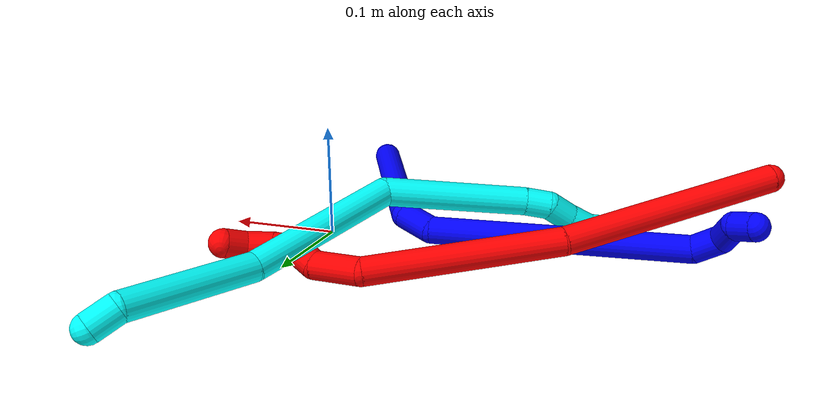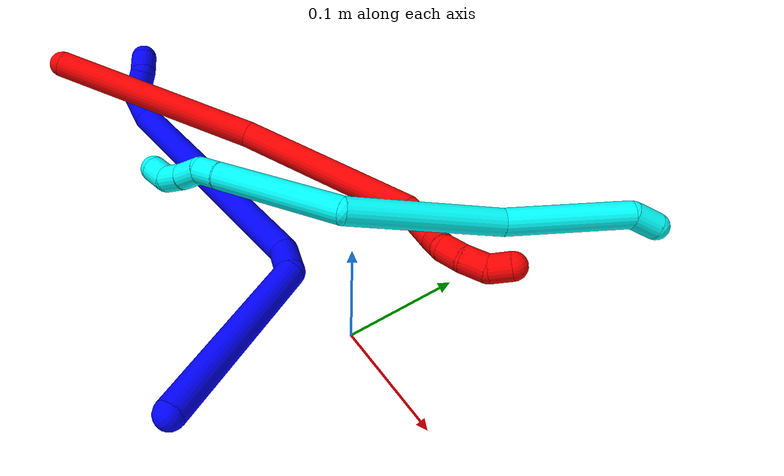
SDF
<sdf version="1.7">
 <world name="default">
  <model name="photoneo_s_sensor">
   <static>1</static>
   <pose>0 0 2 1.57079 1.57079 3.14159</pose>
   <link name="link">
    <inertial><mass>0.1</mass></inertial>
    <sensor name="sensor" type="depth">
     <update_rate>30</update_rate>
     <camera>
      <horizontal_fov>1.22</horizontal_fov>
      <image><width>1920</width><height>1200</height><format>B8G8R8</format></image>
      <clip><near>0.1</near><far>4</far></clip>
      <depth_camera><output>points</output></depth_camera>
     </camera>
     <plugin name="camera_plugin" filename="libgazebo_ros_depth_camera.so">
      <baseline>0.2</baseline>
      <alwaysOn>1</alwaysOn>
      <updateRate>0.0</updateRate>
      <cameraName>camera_ir</cameraName>
      <imageTopicName>/camera/color/image_raw</imageTopicName>
      <cameraInfoTopicName>/camera/color/camera_info</cameraInfoTopicName>
      <depthImageTopicName>/camera/depth/image_raw</depthImageTopicName>
      <depthImageCameraInfoTopicName>/camera/depth/camera_info</depthImageCameraInfoTopicName>
      <pointCloudTopicName>/camera/depth/points</pointCloudTopicName>
      <frameName>fr_optical</frameName>
      <pointCloudCutoff>0.1</pointCloudCutoff>
      <pointCloudCutoffMax>2.0</pointCloudCutoffMax>
      <distortionK1>0</distortionK1>
      <distortionK2>0</distortionK2>
      <distortionK3>0</distortionK3>
      <distortionT1>0</distortionT1>
      <distortionT2>0</distortionT2>
      <CxPrime>0</CxPrime>
      <Cx>0</Cx>
      <Cy>0</Cy>
      <focalLength>0</focalLength>
      <hackBaseline>0</hackBaseline>
     </plugin>
    </sensor>
   </link>
  </model>
  <model name="bin">
   <static>1</static>
   <link name="bottom">
    <collision name="collision-bottom">
     <pose>0 0 -0.01 0 -0 0</pose>
     <geometry><box><size>0.8 0.6 0.02</size></box></geometry>
     <surface>
      <friction><ode><mu>100</mu><mu2>100</mu2></ode></friction>
      <contact><collide_bitmask>65535</collide_bitmask></contact>
     </surface>
    </collision>
   </link>
   <link name="west_wall">
    <collision name="collision-west_wall">
     <pose>-0.41 0 0.1 0 -0 0</pose>
     <geometry><box><size>0.02 0.6 0.2</size></box></geometry>
     <surface>
      <friction><ode><mu>100</mu><mu2>100</mu2></ode></friction>
      <contact><collide_bitmask>65535</collide_bitmask></contact>
     </surface>
    </collision>
   </link>
   <link name="east_wall">
    <collision name="collision-east_wall">
     <pose>0.41 0 0.1 0 -0 0</pose>
     <geometry><box><size>0.02 0.6 0.2</size></box></geometry>
     <surface>
      <friction><ode><mu>100</mu><mu2>100</mu2></ode></friction>
      <contact><collide_bitmask>65535</collide_bitmask></contact>
     </surface>
    </collision>
   </link>
   <link name="south_wall">
    <collision name="collision-south_wall">
     <pose>0 -0.31 0.1 0 -0 0</pose>
     <geometry><box><size>0.8 0.02 0.2</size></box></geometry>
     <surface>
      <friction><ode><mu>100</mu><mu2>100</mu2></ode></friction>
      <contact><collide_bitmask>65535</collide_bitmask></contact>
     </surface>
    </collision>
   </link>
   <link name="north_wall">
    <collision name="collision-north_wall">
     <pose>0 0.31 0.1 0 -0 0</pose>
     <geometry><box><size>0.8 0.02 0.2</size></box></geometry>
     <surface>
      <friction><ode><mu>100</mu><mu2>100</mu2></ode></friction>
      <contact><collide_bitmask>65535</collide_bitmask></contact>
     </surface>
    </collision>
   </link>
  </model>
  <model name="1">
   <static>0</static>
   <link name="1">
    <collision name="collision-cylinder-e_1_1_4">
     <pose>-0.066189 0.036428 -0.026172 -2.19379 -0.975208 1.60421</pose>
     <geometry><cylinder><radius>0.0125</radius><length>0.159913</length></cylinder></geometry>
     <surface>
      <friction><ode><mu>1.16</mu><mu2>1.16</mu2><slip1>0</slip1><slip2>0</slip2></ode></friction>
      <contact><ode><kp>1e+06</kp><kd>1</kd><max_vel>0</max_vel><min_depth>0.001</min_depth></ode></contact>
     </surface>
    </collision>
    <visual name="visual-cylinder-e_1_1_4">
     <pose>-0.066189 0.036428 -0.026172 -2.19379 -0.975208 1.60421</pose>
     <geometry><cylinder><radius>0.0125</radius><length>0.159913</length></cylinder></geometry>
     <material><ambient>0 0 1 1</ambient></material>
    </visual>
    <collision name="collision-cylinder-e_2_4_5">
     <pose>-0.141852 0.085436 -0.047866 -1.22887 -0.617054 0.442359</pose>
     <geometry><cylinder><radius>0.0125</radius><length>0.032743</length></cylinder></geometry>
     <surface>
      <friction><ode><mu>1.16</mu><mu2>1.16</mu2><slip1>0</slip1><slip2>0</slip2></ode></friction>
      <contact><ode><kp>1e+06</kp><kd>1</kd><max_vel>0</max_vel><min_depth>0.001</min_depth></ode></contact>
     </surface>
    </collision>
    <visual name="visual-cylinder-e_2_4_5">
     <pose>-0.141852 0.085436 -0.047866 -1.22887 -0.617054 0.442359</pose>
     <geometry><cylinder><radius>0.0125</radius><length>0.032743</length></cylinder></geometry>
     <material><ambient>0 0 1 1</ambient></material>
    </visual>
    <collision name="collision-cylinder-e_3_5_6">
     <pose>-0.164873 0.204831 0.003412 -1.15784 -0.115658 0.075645</pose>
     <geometry><cylinder><radius>0.0125</radius><length>0.234806</length></cylinder></geometry>
     <surface>
      <friction><ode><mu>1.16</mu><mu2>1.16</mu2><slip1>0</slip1><slip2>0</slip2></ode></friction>
      <contact><ode><kp>1e+06</kp><kd>1</kd><max_vel>0</max_vel><min_depth>0.001</min_depth></ode></contact>
     </surface>
    </collision>
    <visual name="visual-cylinder-e_3_5_6">
     <pose>-0.164873 0.204831 0.003412 -1.15784 -0.115658 0.075645</pose>
     <geometry><cylinder><radius>0.0125</radius><length>0.234806</length></cylinder></geometry>
     <material><ambient>0 0 1 1</ambient></material>
    </visual>
    <collision name="collision-cylinder-e_4_6_7">
     <pose>-0.177354 0.324838 0.049569 -1.61961 0.080695 -0.084729</pose>
     <geometry><cylinder><radius>0.0125</radius><length>0.0265</length></cylinder></geometry>
     <surface>
      <friction><ode><mu>1.16</mu><mu2>1.16</mu2><slip1>0</slip1><slip2>0</slip2></ode></friction>
      <contact><ode><kp>1e+06</kp><kd>1</kd><max_vel>0</max_vel><min_depth>0.001</min_depth></ode></contact>
     </surface>
    </collision>
    <visual name="visual-cylinder-e_4_6_7">
     <pose>-0.177354 0.324838 0.049569 -1.61961 0.080695 -0.084729</pose>
     <geometry><cylinder><radius>0.0125</radius><length>0.0265</length></cylinder></geometry>
     <material><ambient>0 0 1 1</ambient></material>
    </visual>
    <collision name="collision-cylinder-e_5_7_8">
     <pose>-0.177627 0.346792 0.040004 -2.36514 -0.106884 0.260115</pose>
     <geometry><cylinder><radius>0.0125</radius><length>0.025153</length></cylinder></geometry>
     <surface>
      <friction><ode><mu>1.16</mu><mu2>1.16</mu2><slip1>0</slip1><slip2>0</slip2></ode></friction>
      <contact><ode><kp>1e+06</kp><kd>1</kd><max_vel>0</max_vel><min_depth>0.001</min_depth></ode></contact>
     </surface>
    </collision>
    <visual name="visual-cylinder-e_5_7_8">
     <pose>-0.177627 0.346792 0.040004 -2.36514 -0.106884 0.260115</pose>
     <geometry><cylinder><radius>0.0125</radius><length>0.025153</length></cylinder></geometry>
     <material><ambient>0 0 1 1</ambient></material>
    </visual>
    <collision name="collision-cylinder-e_6_8_2">
     <pose>-0.183232 0.364971 0.029598 -1.7272 -0.420525 0.489408</pose>
     <geometry><cylinder><radius>0.0125</radius><length>0.020885</length></cylinder></geometry>
     <surface>
      <friction><ode><mu>1.16</mu><mu2>1.16</mu2><slip1>0</slip1><slip2>0</slip2></ode></friction>
      <contact><ode><kp>1e+06</kp><kd>1</kd><max_vel>0</max_vel><min_depth>0.001</min_depth></ode></contact>
     </surface>
    </collision>
    <visual name="visual-cylinder-e_6_8_2">
     <pose>-0.183232 0.364971 0.029598 -1.7272 -0.420525 0.489408</pose>
     <geometry><cylinder><radius>0.0125</radius><length>0.020885</length></cylinder></geometry>
     <material><ambient>0 0 1 1</ambient></material>
    </visual>
    <collision name="collision-sphere-2">
     <pose>-0.187495 0.374387 0.028113 0 -0 0</pose>
     <geometry><sphere><radius>0.0125</radius></sphere></geometry>
     <surface>
      <friction><ode><mu>1.16</mu><mu2>1.16</mu2><slip1>0</slip1><slip2>0</slip2></ode></friction>
      <contact><ode><kp>1e+06</kp><kd>1</kd><max_vel>0</max_vel><min_depth>0.001</min_depth></ode></contact>
     </surface>
    </collision>
    <visual name="visual-sphere-2">
     <pose>-0.187495 0.374387 0.028113 0 -0 0</pose>
     <geometry><sphere><radius>0.0125</radius></sphere></geometry>
     <material><ambient>0 0 1 1</ambient></material>
    </visual>
    <collision name="collision-sphere-4">
     <pose>-0.132379 0.072857 -0.052343 0 -0 0</pose>
     <geometry><sphere><radius>0.0125</radius></sphere></geometry>
     <surface>
      <friction><ode><mu>1.16</mu><mu2>1.16</mu2><slip1>0</slip1><slip2>0</slip2></ode></friction>
      <contact><ode><kp>1e+06</kp><kd>1</kd><max_vel>0</max_vel><min_depth>0.001</min_depth></ode></contact>
     </surface>
    </collision>
    <visual name="visual-sphere-4">
     <pose>-0.132379 0.072857 -0.052343 0 -0 0</pose>
     <geometry><sphere><radius>0.0125</radius></sphere></geometry>
     <material><ambient>0 0 1 1</ambient></material>
    </visual>
    <collision name="collision-sphere-1">
     <geometry><sphere><radius>0.0125</radius></sphere></geometry>
     <surface>
      <friction><ode><mu>1.16</mu><mu2>1.16</mu2><slip1>0</slip1><slip2>0</slip2></ode></friction>
      <contact><ode><kp>1e+06</kp><kd>1</kd><max_vel>0</max_vel><min_depth>0.001</min_depth></ode></contact>
     </surface>
    </collision>
    <visual name="visual-sphere-1">
     <geometry><sphere><radius>0.0125</radius></sphere></geometry>
     <material><ambient>0 0 1 1</ambient></material>
    </visual>
    <collision name="collision-sphere-8">
     <pose>-0.178969 0.355554 0.031083 0 -0 0</pose>
     <geometry><sphere><radius>0.0125</radius></sphere></geometry>
     <surface>
      <friction><ode><mu>1.16</mu><mu2>1.16</mu2><slip1>0</slip1><slip2>0</slip2></ode></friction>
      <contact><ode><kp>1e+06</kp><kd>1</kd><max_vel>0</max_vel><min_depth>0.001</min_depth></ode></contact>
     </surface>
    </collision>
    <visual name="visual-sphere-8">
     <pose>-0.178969 0.355554 0.031083 0 -0 0</pose>
     <geometry><sphere><radius>0.0125</radius></sphere></geometry>
     <material><ambient>0 0 1 1</ambient></material>
    </visual>
    <collision name="collision-sphere-5">
     <pose>-0.151325 0.098016 -0.043389 0 -0 0</pose>
     <geometry><sphere><radius>0.0125</radius></sphere></geometry>
     <surface>
      <friction><ode><mu>1.16</mu><mu2>1.16</mu2><slip1>0</slip1><slip2>0</slip2></ode></friction>
      <contact><ode><kp>1e+06</kp><kd>1</kd><max_vel>0</max_vel><min_depth>0.001</min_depth></ode></contact>
     </surface>
    </collision>
    <visual name="visual-sphere-5">
     <pose>-0.151325 0.098016 -0.043389 0 -0 0</pose>
     <geometry><sphere><radius>0.0125</radius></sphere></geometry>
     <material><ambient>0 0 1 1</ambient></material>
    </visual>
    <collision name="collision-sphere-6">
     <pose>-0.178422 0.311646 0.050214 0 -0 0</pose>
     <geometry><sphere><radius>0.0125</radius></sphere></geometry>
     <surface>
      <friction><ode><mu>1.16</mu><mu2>1.16</mu2><slip1>0</slip1><slip2>0</slip2></ode></friction>
      <contact><ode><kp>1e+06</kp><kd>1</kd><max_vel>0</max_vel><min_depth>0.001</min_depth></ode></contact>
     </surface>
    </collision>
    <visual name="visual-sphere-6">
     <pose>-0.178422 0.311646 0.050214 0 -0 0</pose>
     <geometry><sphere><radius>0.0125</radius></sphere></geometry>
     <material><ambient>0 0 1 1</ambient></material>
    </visual>
    <collision name="collision-sphere-7">
     <pose>-0.176286 0.338029 0.048925 0 -0 0</pose>
     <geometry><sphere><radius>0.0125</radius></sphere></geometry>
     <surface>
      <friction><ode><mu>1.16</mu><mu2>1.16</mu2><slip1>0</slip1><slip2>0</slip2></ode></friction>
      <contact><ode><kp>1e+06</kp><kd>1</kd><max_vel>0</max_vel><min_depth>0.001</min_depth></ode></contact>
     </surface>
    </collision>
    <visual name="visual-sphere-7">
     <pose>-0.176286 0.338029 0.048925 0 -0 0</pose>
     <geometry><sphere><radius>0.0125</radius></sphere></geometry>
     <material><ambient>0 0 1 1</ambient></material>
    </visual>
    <inertial>
     <pose>-0.133874 0.163344 -0.004026 0 -0 0</pose>
     <mass>0.5</mass>
     <inertia>
      <ixx>0.001344</ixx>
      <ixy>0</ixy>
      <ixz>0</ixz>
      <iyy>0.000993</iyy>
      <iyz>0</iyz>
      <izz>-0.000739</izz>
     </inertia>
    </inertial>
   </link>
   <pose>0.007781 -0.154819 0.034699 2.64078 -0.646091 -1.31828</pose>
  </model>
  <model name="2">
   <static>0</static>
   <link name="2">
    <collision name="collision-cylinder-e_1_1_4">
     <pose>0.023447 0.090507 0.03524 -1.19949 0.236874 -0.16237</pose>
     <geometry><cylinder><radius>0.0125</radius><length>0.199831</length></cylinder></geometry>
     <surface>
      <friction><ode><mu>1.16</mu><mu2>1.16</mu2><slip1>0</slip1><slip2>0</slip2></ode></friction>
      <contact><ode><kp>1e+06</kp><kd>1</kd><max_vel>0</max_vel><min_depth>0.001</min_depth></ode></contact>
     </surface>
    </collision>
    <visual name="visual-cylinder-e_1_1_4">
     <pose>0.023447 0.090507 0.03524 -1.19949 0.236874 -0.16237</pose>
     <geometry><cylinder><radius>0.0125</radius><length>0.199831</length></cylinder></geometry>
     <material><ambient>1 0 0 1</ambient></material>
    </visual>
    <collision name="collision-cylinder-e_2_4_5">
     <pose>0.071844 0.261661 0.08537 -1.38822 0.295343 -0.246353</pose>
     <geometry><cylinder><radius>0.0125</radius><length>0.171443</length></cylinder></geometry>
     <surface>
      <friction><ode><mu>1.16</mu><mu2>1.16</mu2><slip1>0</slip1><slip2>0</slip2></ode></friction>
      <contact><ode><kp>1e+06</kp><kd>1</kd><max_vel>0</max_vel><min_depth>0.001</min_depth></ode></contact>
     </surface>
    </collision>
    <visual name="visual-cylinder-e_2_4_5">
     <pose>0.071844 0.261661 0.08537 -1.38822 0.295343 -0.246353</pose>
     <geometry><cylinder><radius>0.0125</radius><length>0.171443</length></cylinder></geometry>
     <material><ambient>1 0 0 1</ambient></material>
    </visual>
    <collision name="collision-cylinder-e_3_5_6">
     <pose>0.102072 0.361989 0.092338 -1.95349 0.243759 -0.358789</pose>
     <geometry><cylinder><radius>0.0125</radius><length>0.043725</length></cylinder></geometry>
     <surface>
      <friction><ode><mu>1.16</mu><mu2>1.16</mu2><slip1>0</slip1><slip2>0</slip2></ode></friction>
      <contact><ode><kp>1e+06</kp><kd>1</kd><max_vel>0</max_vel><min_depth>0.001</min_depth></ode></contact>
     </surface>
    </collision>
    <visual name="visual-cylinder-e_3_5_6">
     <pose>0.102072 0.361989 0.092338 -1.95349 0.243759 -0.358789</pose>
     <geometry><cylinder><radius>0.0125</radius><length>0.043725</length></cylinder></geometry>
     <material><ambient>1 0 0 1</ambient></material>
    </visual>
    <collision name="collision-cylinder-e_4_6_7">
     <pose>0.112954 0.387678 0.078046 -2.38544 0.569552 -1.27028</pose>
     <geometry><cylinder><radius>0.0125</radius><length>0.020792</length></cylinder></geometry>
     <surface>
      <friction><ode><mu>1.16</mu><mu2>1.16</mu2><slip1>0</slip1><slip2>0</slip2></ode></friction>
      <contact><ode><kp>1e+06</kp><kd>1</kd><max_vel>0</max_vel><min_depth>0.001</min_depth></ode></contact>
     </surface>
    </collision>
    <visual name="visual-cylinder-e_4_6_7">
     <pose>0.112954 0.387678 0.078046 -2.38544 0.569552 -1.27028</pose>
     <geometry><cylinder><radius>0.0125</radius><length>0.020792</length></cylinder></geometry>
     <material><ambient>1 0 0 1</ambient></material>
    </visual>
    <collision name="collision-cylinder-e_5_7_8">
     <pose>0.123272 0.402958 0.070129 -1.73626 0.46454 -0.544747</pose>
     <geometry><cylinder><radius>0.0125</radius><length>0.021033</length></cylinder></geometry>
     <surface>
      <friction><ode><mu>1.16</mu><mu2>1.16</mu2><slip1>0</slip1><slip2>0</slip2></ode></friction>
      <contact><ode><kp>1e+06</kp><kd>1</kd><max_vel>0</max_vel><min_depth>0.001</min_depth></ode></contact>
     </surface>
    </collision>
    <visual name="visual-cylinder-e_5_7_8">
     <pose>0.123272 0.402958 0.070129 -1.73626 0.46454 -0.544747</pose>
     <geometry><cylinder><radius>0.0125</radius><length>0.021033</length></cylinder></geometry>
     <material><ambient>1 0 0 1</ambient></material>
    </visual>
    <collision name="collision-cylinder-e_6_8_9">
     <pose>0.132901 0.42263 0.069552 -1.47763 0.440138 -0.402026</pose>
     <geometry><cylinder><radius>0.0125</radius><length>0.023086</length></cylinder></geometry>
     <surface>
      <friction><ode><mu>1.16</mu><mu2>1.16</mu2><slip1>0</slip1><slip2>0</slip2></ode></friction>
      <contact><ode><kp>1e+06</kp><kd>1</kd><max_vel>0</max_vel><min_depth>0.001</min_depth></ode></contact>
     </surface>
    </collision>
    <visual name="visual-cylinder-e_6_8_9">
     <pose>0.132901 0.42263 0.069552 -1.47763 0.440138 -0.402026</pose>
     <geometry><cylinder><radius>0.0125</radius><length>0.023086</length></cylinder></geometry>
     <material><ambient>1 0 0 1</ambient></material>
    </visual>
    <collision name="collision-cylinder-e_7_9_2">
     <pose>0.144489 0.439204 0.074798 -0.965437 0.7261 -0.393039</pose>
     <geometry><cylinder><radius>0.0125</radius><length>0.02009</length></cylinder></geometry>
     <surface>
      <friction><ode><mu>1.16</mu><mu2>1.16</mu2><slip1>0</slip1><slip2>0</slip2></ode></friction>
      <contact><ode><kp>1e+06</kp><kd>1</kd><max_vel>0</max_vel><min_depth>0.001</min_depth></ode></contact>
     </surface>
    </collision>
    <visual name="visual-cylinder-e_7_9_2">
     <pose>0.144489 0.439204 0.074798 -0.965437 0.7261 -0.393039</pose>
     <geometry><cylinder><radius>0.0125</radius><length>0.02009</length></cylinder></geometry>
     <material><ambient>1 0 0 1</ambient></material>
    </visual>
    <collision name="collision-sphere-2">
     <pose>0.151158 0.44538 0.079072 0 -0 0</pose>
     <geometry><sphere><radius>0.0125</radius></sphere></geometry>
     <surface>
      <friction><ode><mu>1.16</mu><mu2>1.16</mu2><slip1>0</slip1><slip2>0</slip2></ode></friction>
      <contact><ode><kp>1e+06</kp><kd>1</kd><max_vel>0</max_vel><min_depth>0.001</min_depth></ode></contact>
     </surface>
    </collision>
    <visual name="visual-sphere-2">
     <pose>0.151158 0.44538 0.079072 0 -0 0</pose>
     <geometry><sphere><radius>0.0125</radius></sphere></geometry>
     <material><ambient>1 0 0 1</ambient></material>
    </visual>
    <collision name="collision-sphere-9">
     <pose>0.137819 0.433027 0.070523 0 -0 0</pose>
     <geometry><sphere><radius>0.0125</radius></sphere></geometry>
     <surface>
      <friction><ode><mu>1.16</mu><mu2>1.16</mu2><slip1>0</slip1><slip2>0</slip2></ode></friction>
      <contact><ode><kp>1e+06</kp><kd>1</kd><max_vel>0</max_vel><min_depth>0.001</min_depth></ode></contact>
     </surface>
    </collision>
    <visual name="visual-sphere-9">
     <pose>0.137819 0.433027 0.070523 0 -0 0</pose>
     <geometry><sphere><radius>0.0125</radius></sphere></geometry>
     <material><ambient>1 0 0 1</ambient></material>
    </visual>
    <collision name="collision-sphere-4">
     <pose>0.046893 0.181014 0.07048 0 -0 0</pose>
     <geometry><sphere><radius>0.0125</radius></sphere></geometry>
     <surface>
      <friction><ode><mu>1.16</mu><mu2>1.16</mu2><slip1>0</slip1><slip2>0</slip2></ode></friction>
      <contact><ode><kp>1e+06</kp><kd>1</kd><max_vel>0</max_vel><min_depth>0.001</min_depth></ode></contact>
     </surface>
    </collision>
    <visual name="visual-sphere-4">
     <pose>0.046893 0.181014 0.07048 0 -0 0</pose>
     <geometry><sphere><radius>0.0125</radius></sphere></geometry>
     <material><ambient>1 0 0 1</ambient></material>
    </visual>
    <collision name="collision-sphere-1">
     <geometry><sphere><radius>0.0125</radius></sphere></geometry>
     <surface>
      <friction><ode><mu>1.16</mu><mu2>1.16</mu2><slip1>0</slip1><slip2>0</slip2></ode></friction>
      <contact><ode><kp>1e+06</kp><kd>1</kd><max_vel>0</max_vel><min_depth>0.001</min_depth></ode></contact>
     </surface>
    </collision>
    <visual name="visual-sphere-1">
     <geometry><sphere><radius>0.0125</radius></sphere></geometry>
     <material><ambient>1 0 0 1</ambient></material>
    </visual>
    <collision name="collision-sphere-8">
     <pose>0.127983 0.412232 0.06858 0 -0 0</pose>
     <geometry><sphere><radius>0.0125</radius></sphere></geometry>
     <surface>
      <friction><ode><mu>1.16</mu><mu2>1.16</mu2><slip1>0</slip1><slip2>0</slip2></ode></friction>
      <contact><ode><kp>1e+06</kp><kd>1</kd><max_vel>0</max_vel><min_depth>0.001</min_depth></ode></contact>
     </surface>
    </collision>
    <visual name="visual-sphere-8">
     <pose>0.127983 0.412232 0.06858 0 -0 0</pose>
     <geometry><sphere><radius>0.0125</radius></sphere></geometry>
     <material><ambient>1 0 0 1</ambient></material>
    </visual>
    <collision name="collision-sphere-5">
     <pose>0.096795 0.342308 0.100261 0 -0 0</pose>
     <geometry><sphere><radius>0.0125</radius></sphere></geometry>
     <surface>
      <friction><ode><mu>1.16</mu><mu2>1.16</mu2><slip1>0</slip1><slip2>0</slip2></ode></friction>
      <contact><ode><kp>1e+06</kp><kd>1</kd><max_vel>0</max_vel><min_depth>0.001</min_depth></ode></contact>
     </surface>
    </collision>
    <visual name="visual-sphere-5">
     <pose>0.096795 0.342308 0.100261 0 -0 0</pose>
     <geometry><sphere><radius>0.0125</radius></sphere></geometry>
     <material><ambient>1 0 0 1</ambient></material>
    </visual>
    <collision name="collision-sphere-6">
     <pose>0.107348 0.381671 0.084415 0 -0 0</pose>
     <geometry><sphere><radius>0.0125</radius></sphere></geometry>
     <surface>
      <friction><ode><mu>1.16</mu><mu2>1.16</mu2><slip1>0</slip1><slip2>0</slip2></ode></friction>
      <contact><ode><kp>1e+06</kp><kd>1</kd><max_vel>0</max_vel><min_depth>0.001</min_depth></ode></contact>
     </surface>
    </collision>
    <visual name="visual-sphere-6">
     <pose>0.107348 0.381671 0.084415 0 -0 0</pose>
     <geometry><sphere><radius>0.0125</radius></sphere></geometry>
     <material><ambient>1 0 0 1</ambient></material>
    </visual>
    <collision name="collision-sphere-7">
     <pose>0.11856 0.393685 0.071677 0 -0 0</pose>
     <geometry><sphere><radius>0.0125</radius></sphere></geometry>
     <surface>
      <friction><ode><mu>1.16</mu><mu2>1.16</mu2><slip1>0</slip1><slip2>0</slip2></ode></friction>
      <contact><ode><kp>1e+06</kp><kd>1</kd><max_vel>0</max_vel><min_depth>0.001</min_depth></ode></contact>
     </surface>
    </collision>
    <visual name="visual-sphere-7">
     <pose>0.11856 0.393685 0.071677 0 -0 0</pose>
     <geometry><sphere><radius>0.0125</radius></sphere></geometry>
     <material><ambient>1 0 0 1</ambient></material>
    </visual>
    <inertial>
     <pose>0.064756 0.227781 0.063844 0 -0 0</pose>
     <mass>0.5</mass>
     <inertia>
      <ixx>0.000854</ixx>
      <ixy>0</ixy>
      <ixz>0</ixz>
      <iyy>0.000193</iyy>
      <iyz>0</iyz>
      <izz>-0.001305</izz>
     </inertia>
    </inertial>
   </link>
   <pose>-0.388129 -0.085134 0.065743 -2.15743 -1.14123 0.87235</pose>
  </model>
  <model name="3">
   <static>0</static>
   <link name="3">
    <collision name="collision-cylinder-e_1_1_4">
     <pose>-0.005707 -0.001882 -0.011336 2.97708 -0.46095 -2.46583</pose>
     <geometry><cylinder><radius>0.0125</radius><length>0.025661</length></cylinder></geometry>
     <surface>
      <friction><ode><mu>1.16</mu><mu2>1.16</mu2><slip1>0</slip1><slip2>0</slip2></ode></friction>
      <contact><ode><kp>1e+06</kp><kd>1</kd><max_vel>0</max_vel><min_depth>0.001</min_depth></ode></contact>
     </surface>
    </collision>
    <visual name="visual-cylinder-e_1_1_4">
     <pose>-0.005707 -0.001882 -0.011336 2.97708 -0.46095 -2.46583</pose>
     <geometry><cylinder><radius>0.0125</radius><length>0.025661</length></cylinder></geometry>
     <material><ambient>0.003922 1 0.996078 1</ambient></material>
    </visual>
    <collision name="collision-cylinder-e_2_4_5">
     <pose>-0.034586 -0.038143 -0.062618 2.43095 -0.414232 -1.03051</pose>
     <geometry><cylinder><radius>0.0125</radius><length>0.115143</length></cylinder></geometry>
     <surface>
      <friction><ode><mu>1.16</mu><mu2>1.16</mu2><slip1>0</slip1><slip2>0</slip2></ode></friction>
      <contact><ode><kp>1e+06</kp><kd>1</kd><max_vel>0</max_vel><min_depth>0.001</min_depth></ode></contact>
     </surface>
    </collision>
    <visual name="visual-cylinder-e_2_4_5">
     <pose>-0.034586 -0.038143 -0.062618 2.43095 -0.414232 -1.03051</pose>
     <geometry><cylinder><radius>0.0125</radius><length>0.115143</length></cylinder></geometry>
     <material><ambient>0.003922 1 0.996078 1</ambient></material>
    </visual>
    <collision name="collision-cylinder-e_3_5_6">
     <pose>-0.096085 -0.103127 -0.154563 2.60963 -0.56591 -1.63583</pose>
     <geometry><cylinder><radius>0.0125</radius><length>0.142963</length></cylinder></geometry>
     <surface>
      <friction><ode><mu>1.16</mu><mu2>1.16</mu2><slip1>0</slip1><slip2>0</slip2></ode></friction>
      <contact><ode><kp>1e+06</kp><kd>1</kd><max_vel>0</max_vel><min_depth>0.001</min_depth></ode></contact>
     </surface>
    </collision>
    <visual name="visual-cylinder-e_3_5_6">
     <pose>-0.096085 -0.103127 -0.154563 2.60963 -0.56591 -1.63583</pose>
     <geometry><cylinder><radius>0.0125</radius><length>0.142963</length></cylinder></geometry>
     <material><ambient>0.003922 1 0.996078 1</ambient></material>
    </visual>
    <collision name="collision-cylinder-e_4_6_7">
     <pose>-0.125302 -0.163059 -0.261565 2.65175 0.145132 0.566073</pose>
     <geometry><cylinder><radius>0.0125</radius><length>0.12599</length></cylinder></geometry>
     <surface>
      <friction><ode><mu>1.16</mu><mu2>1.16</mu2><slip1>0</slip1><slip2>0</slip2></ode></friction>
      <contact><ode><kp>1e+06</kp><kd>1</kd><max_vel>0</max_vel><min_depth>0.001</min_depth></ode></contact>
     </surface>
    </collision>
    <visual name="visual-cylinder-e_4_6_7">
     <pose>-0.125302 -0.163059 -0.261565 2.65175 0.145132 0.566073</pose>
     <geometry><cylinder><radius>0.0125</radius><length>0.12599</length></cylinder></geometry>
     <material><ambient>0.003922 1 0.996078 1</ambient></material>
    </visual>
    <collision name="collision-cylinder-e_5_7_8">
     <pose>-0.113322 -0.197698 -0.326058 2.63126 0.257911 0.922688</pose>
     <geometry><cylinder><radius>0.0125</radius><length>0.022497</length></cylinder></geometry>
     <surface>
      <friction><ode><mu>1.16</mu><mu2>1.16</mu2><slip1>0</slip1><slip2>0</slip2></ode></friction>
      <contact><ode><kp>1e+06</kp><kd>1</kd><max_vel>0</max_vel><min_depth>0.001</min_depth></ode></contact>
     </surface>
    </collision>
    <visual name="visual-cylinder-e_5_7_8">
     <pose>-0.113322 -0.197698 -0.326058 2.63126 0.257911 0.922688</pose>
     <geometry><cylinder><radius>0.0125</radius><length>0.022497</length></cylinder></geometry>
     <material><ambient>0.003922 1 0.996078 1</ambient></material>
    </visual>
    <collision name="collision-cylinder-e_6_8_9">
     <pose>-0.107303 -0.212462 -0.341683 2.1465 0.272594 0.494692</pose>
     <geometry><cylinder><radius>0.0125</radius><length>0.023399</length></cylinder></geometry>
     <surface>
      <friction><ode><mu>1.16</mu><mu2>1.16</mu2><slip1>0</slip1><slip2>0</slip2></ode></friction>
      <contact><ode><kp>1e+06</kp><kd>1</kd><max_vel>0</max_vel><min_depth>0.001</min_depth></ode></contact>
     </surface>
    </collision>
    <visual name="visual-cylinder-e_6_8_9">
     <pose>-0.107303 -0.212462 -0.341683 2.1465 0.272594 0.494692</pose>
     <geometry><cylinder><radius>0.0125</radius><length>0.023399</length></cylinder></geometry>
     <material><ambient>0.003922 1 0.996078 1</ambient></material>
    </visual>
    <collision name="collision-cylinder-e_7_9_10">
     <pose>-0.100715 -0.23005 -0.354782 2.27879 0.310646 0.655773</pose>
     <geometry><cylinder><radius>0.0125</radius><length>0.022497</length></cylinder></geometry>
     <surface>
      <friction><ode><mu>1.16</mu><mu2>1.16</mu2><slip1>0</slip1><slip2>0</slip2></ode></friction>
      <contact><ode><kp>1e+06</kp><kd>1</kd><max_vel>0</max_vel><min_depth>0.001</min_depth></ode></contact>
     </surface>
    </collision>
    <visual name="visual-cylinder-e_7_9_10">
     <pose>-0.100715 -0.23005 -0.354782 2.27879 0.310646 0.655773</pose>
     <geometry><cylinder><radius>0.0125</radius><length>0.022497</length></cylinder></geometry>
     <material><ambient>0.003922 1 0.996078 1</ambient></material>
    </visual>
    <collision name="collision-cylinder-e_8_10_2">
     <pose>-0.093171 -0.240818 -0.371524 2.87852 0.385196 1.94943</pose>
     <geometry><cylinder><radius>0.0125</radius><length>0.021851</length></cylinder></geometry>
     <surface>
      <friction><ode><mu>1.16</mu><mu2>1.16</mu2><slip1>0</slip1><slip2>0</slip2></ode></friction>
      <contact><ode><kp>1e+06</kp><kd>1</kd><max_vel>0</max_vel><min_depth>0.001</min_depth></ode></contact>
     </surface>
    </collision>
    <visual name="visual-cylinder-e_8_10_2">
     <pose>-0.093171 -0.240818 -0.371524 2.87852 0.385196 1.94943</pose>
     <geometry><cylinder><radius>0.0125</radius><length>0.021851</length></cylinder></geometry>
     <material><ambient>0.003922 1 0.996078 1</ambient></material>
    </visual>
    <collision name="collision-sphere-2">
     <pose>-0.089066 -0.243451 -0.3813 0 -0 0</pose>
     <geometry><sphere><radius>0.0125</radius></sphere></geometry>
     <surface>
      <friction><ode><mu>1.16</mu><mu2>1.16</mu2><slip1>0</slip1><slip2>0</slip2></ode></friction>
      <contact><ode><kp>1e+06</kp><kd>1</kd><max_vel>0</max_vel><min_depth>0.001</min_depth></ode></contact>
     </surface>
    </collision>
    <visual name="visual-sphere-2">
     <pose>-0.089066 -0.243451 -0.3813 0 -0 0</pose>
     <geometry><sphere><radius>0.0125</radius></sphere></geometry>
     <material><ambient>0.003922 1 0.996078 1</ambient></material>
    </visual>
    <collision name="collision-sphere-10">
     <pose>-0.097276 -0.238186 -0.361747 0 -0 0</pose>
     <geometry><sphere><radius>0.0125</radius></sphere></geometry>
     <surface>
      <friction><ode><mu>1.16</mu><mu2>1.16</mu2><slip1>0</slip1><slip2>0</slip2></ode></friction>
      <contact><ode><kp>1e+06</kp><kd>1</kd><max_vel>0</max_vel><min_depth>0.001</min_depth></ode></contact>
     </surface>
    </collision>
    <visual name="visual-sphere-10">
     <pose>-0.097276 -0.238186 -0.361747 0 -0 0</pose>
     <geometry><sphere><radius>0.0125</radius></sphere></geometry>
     <material><ambient>0.003922 1 0.996078 1</ambient></material>
    </visual>
    <collision name="collision-sphere-9">
     <pose>-0.104153 -0.221913 -0.347817 0 -0 0</pose>
     <geometry><sphere><radius>0.0125</radius></sphere></geometry>
     <surface>
      <friction><ode><mu>1.16</mu><mu2>1.16</mu2><slip1>0</slip1><slip2>0</slip2></ode></friction>
      <contact><ode><kp>1e+06</kp><kd>1</kd><max_vel>0</max_vel><min_depth>0.001</min_depth></ode></contact>
     </surface>
    </collision>
    <visual name="visual-sphere-9">
     <pose>-0.104153 -0.221913 -0.347817 0 -0 0</pose>
     <geometry><sphere><radius>0.0125</radius></sphere></geometry>
     <material><ambient>0.003922 1 0.996078 1</ambient></material>
    </visual>
    <collision name="collision-sphere-4">
     <pose>-0.011414 -0.003764 -0.022672 0 -0 0</pose>
     <geometry><sphere><radius>0.0125</radius></sphere></geometry>
     <surface>
      <friction><ode><mu>1.16</mu><mu2>1.16</mu2><slip1>0</slip1><slip2>0</slip2></ode></friction>
      <contact><ode><kp>1e+06</kp><kd>1</kd><max_vel>0</max_vel><min_depth>0.001</min_depth></ode></contact>
     </surface>
    </collision>
    <visual name="visual-sphere-4">
     <pose>-0.011414 -0.003764 -0.022672 0 -0 0</pose>
     <geometry><sphere><radius>0.0125</radius></sphere></geometry>
     <material><ambient>0.003922 1 0.996078 1</ambient></material>
    </visual>
    <collision name="collision-sphere-1">
     <geometry><sphere><radius>0.0125</radius></sphere></geometry>
     <surface>
      <friction><ode><mu>1.16</mu><mu2>1.16</mu2><slip1>0</slip1><slip2>0</slip2></ode></friction>
      <contact><ode><kp>1e+06</kp><kd>1</kd><max_vel>0</max_vel><min_depth>0.001</min_depth></ode></contact>
     </surface>
    </collision>
    <visual name="visual-sphere-1">
     <geometry><sphere><radius>0.0125</radius></sphere></geometry>
     <material><ambient>0.003922 1 0.996078 1</ambient></material>
    </visual>
    <collision name="collision-sphere-8">
     <pose>-0.110453 -0.203011 -0.335549 0 -0 0</pose>
     <geometry><sphere><radius>0.0125</radius></sphere></geometry>
     <surface>
      <friction><ode><mu>1.16</mu><mu2>1.16</mu2><slip1>0</slip1><slip2>0</slip2></ode></friction>
      <contact><ode><kp>1e+06</kp><kd>1</kd><max_vel>0</max_vel><min_depth>0.001</min_depth></ode></contact>
     </surface>
    </collision>
    <visual name="visual-sphere-8">
     <pose>-0.110453 -0.203011 -0.335549 0 -0 0</pose>
     <geometry><sphere><radius>0.0125</radius></sphere></geometry>
     <material><ambient>0.003922 1 0.996078 1</ambient></material>
    </visual>
    <collision name="collision-sphere-5">
     <pose>-0.057758 -0.072522 -0.102563 0 -0 0</pose>
     <geometry><sphere><radius>0.0125</radius></sphere></geometry>
     <surface>
      <friction><ode><mu>1.16</mu><mu2>1.16</mu2><slip1>0</slip1><slip2>0</slip2></ode></friction>
      <contact><ode><kp>1e+06</kp><kd>1</kd><max_vel>0</max_vel><min_depth>0.001</min_depth></ode></contact>
     </surface>
    </collision>
    <visual name="visual-sphere-5">
     <pose>-0.057758 -0.072522 -0.102563 0 -0 0</pose>
     <geometry><sphere><radius>0.0125</radius></sphere></geometry>
     <material><ambient>0.003922 1 0.996078 1</ambient></material>
    </visual>
    <collision name="collision-sphere-6">
     <pose>-0.134412 -0.133732 -0.206562 0 -0 0</pose>
     <geometry><sphere><radius>0.0125</radius></sphere></geometry>
     <surface>
      <friction><ode><mu>1.16</mu><mu2>1.16</mu2><slip1>0</slip1><slip2>0</slip2></ode></friction>
      <contact><ode><kp>1e+06</kp><kd>1</kd><max_vel>0</max_vel><min_depth>0.001</min_depth></ode></contact>
     </surface>
    </collision>
    <visual name="visual-sphere-6">
     <pose>-0.134412 -0.133732 -0.206562 0 -0 0</pose>
     <geometry><sphere><radius>0.0125</radius></sphere></geometry>
     <material><ambient>0.003922 1 0.996078 1</ambient></material>
    </visual>
    <collision name="collision-sphere-7">
     <pose>-0.116191 -0.192385 -0.316567 0 -0 0</pose>
     <geometry><sphere><radius>0.0125</radius></sphere></geometry>
     <surface>
      <friction><ode><mu>1.16</mu><mu2>1.16</mu2><slip1>0</slip1><slip2>0</slip2></ode></friction>
      <contact><ode><kp>1e+06</kp><kd>1</kd><max_vel>0</max_vel><min_depth>0.001</min_depth></ode></contact>
     </surface>
    </collision>
    <visual name="visual-sphere-7">
     <pose>-0.116191 -0.192385 -0.316567 0 -0 0</pose>
     <geometry><sphere><radius>0.0125</radius></sphere></geometry>
     <material><ambient>0.003922 1 0.996078 1</ambient></material>
    </visual>
    <inertial>
     <pose>-0.086028 -0.119167 -0.187964 0 -0 0</pose>
     <mass>0.5</mass>
     <inertia>
      <ixx>-3.2e-05</ixx>
      <ixy>0</ixy>
      <ixz>0</ixz>
      <iyy>-0.000299</iyy>
      <iyz>0</iyz>
      <izz>0.000401</izz>
     </inertia>
    </inertial>
   </link>
   <pose>0.055994 0.284697 0.0127 2.01014 0.576384 2.16776</pose>
  </model>
 </world>
</sdf>
